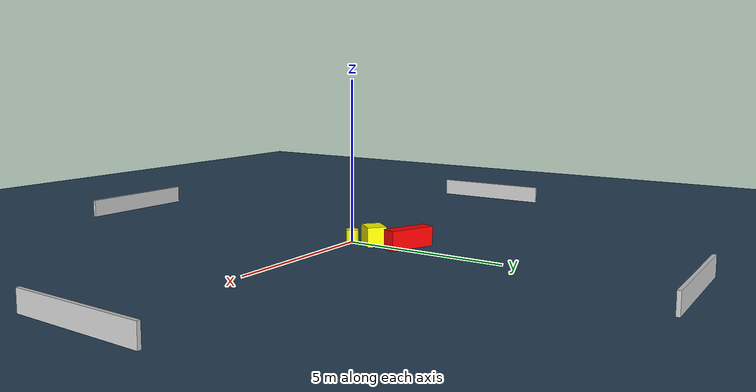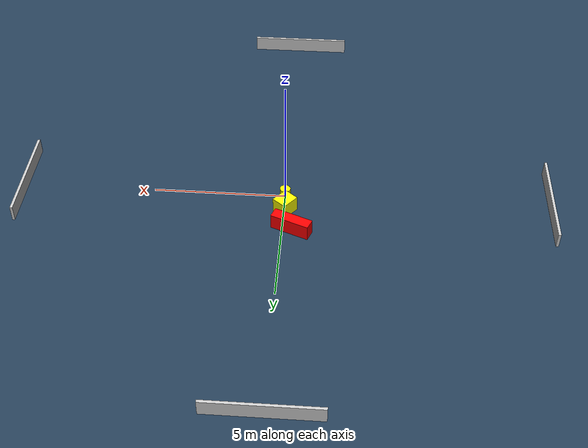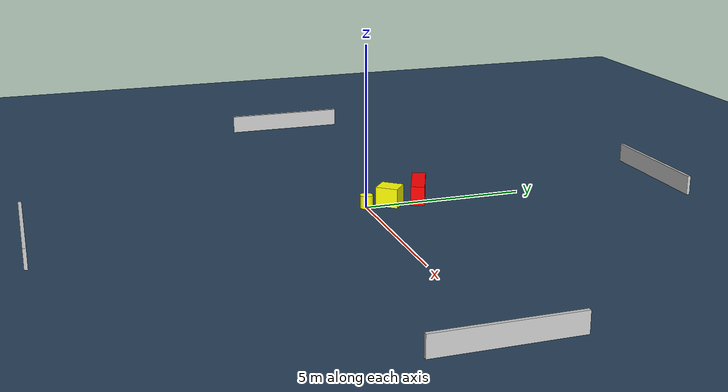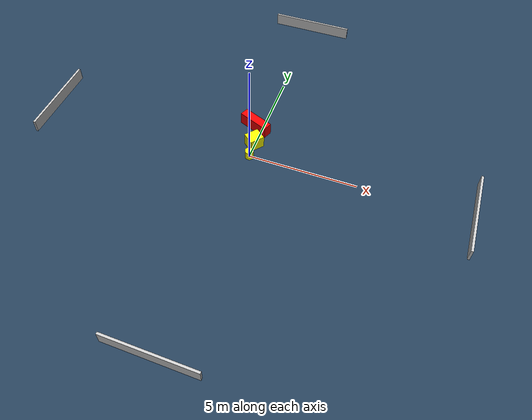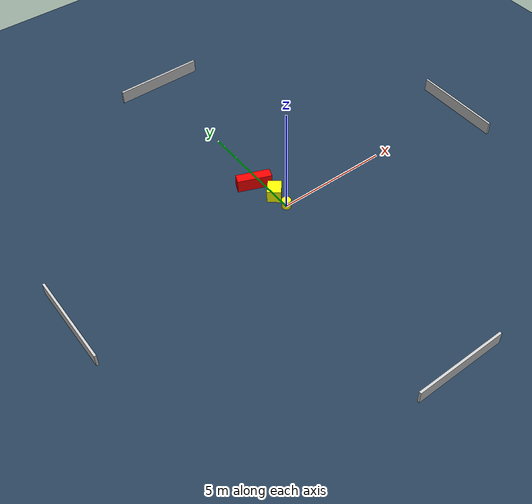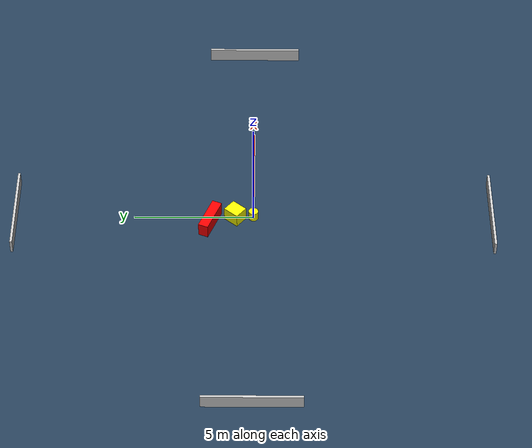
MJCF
<?xml version="1.0" ?>
<mujoco model="generated_environment">
  <option timestep="0.01" integrator="RK4" cone="elliptic"/>
  <default>
    <geom density="1"/>
  </default>
  <asset>
    <texture builtin="gradient" height="3072" name="skybox" rgb1="0.3 0.5 0.7" rgb2="0 0 0" type="skybox" width="512"/>
    <texture builtin="checker" height="300" name="groundplane" rgb1="0.2 0.3 0.4" rgb2="0.1 0.2 0.3" type="2d" width="300"/>
    <material name="groundplane" reflectance="0.2" texrepeat="5 5" texture="groundplane"/>
  </asset>
  <worldbody>
    <light dir="0 0 -1" directional="true" pos="0 0 1.5"/>
    <geom condim="3" friction="0.5 0.005 0.001" material="groundplane" name="floor" pos="0 0 0" size="0 0 0.05" type="plane"/>
    <body name="walls">
      <geom name="wall_1" condim="4" pos="-10.0 0.0 0.3" rgba="0.800000011920929 0.800000011920929 0.800000011920929 1.0" size="0.05 2.0 0.3" type="box"/>
      <geom name="wall_2" condim="4" pos="10.0 0.0 0.3" rgba="0.800000011920929 0.800000011920929 0.800000011920929 1.0" size="0.05 2.0 0.3" type="box"/>
      <geom name="wall_3" condim="4" pos="0.0 -10.0 0.3" rgba="0.800000011920929 0.800000011920929 0.800000011920929 1.0" size="2.0 0.05 0.3" type="box"/>
      <geom name="wall_4" condim="4" pos="0.0 10.0 0.3" rgba="0.800000011920929 0.800000011920929 0.800000011920929 1.0" size="2.0 0.05 0.3" type="box"/>
    </body>
    <body name="robot">
      <joint name="joint_x" type="slide" pos="0 0 0" axis="1 0 0"/>
      <joint name="joint_y" type="slide" pos="0 0 0" axis="0 1 0"/>
      <geom name="robot" type="cylinder" pos="0.0 0.0 0.2" size="0.2 0.2 0.0" mass="5.0" friction="1.0 0.005 0.0001" condim="4" rgba="1.0 1.0 0.0 1.0"/>
    </body>
    <body name="obstacle_1_movable">
      <geom name="obstacle_1_movable" condim="4" pos="-0.0480573509545639 0.7669115551489215 0.3" euler="0 0 230.32535363471726" friction="0.0 0.005 0.001" rgba="1.0 1.0 0.0 1.0" size="0.34506664294923167 0.2991868053273519 0.3" type="box" mass="0.1"/>
      <joint type="free"/>
    </body>
    <body name="obstacle_2_static">
      <geom name="obstacle_2_static" condim="4" pos="-0.3520514222589331 1.813260540161212 0.3" euler="0 0 337.8074135809195" friction="0.0 0.005 0.001" rgba="1.0 0.0 0.0 1.0" size="0.7465743982043107 0.21055330947139173 0.3" type="box"/>
    </body>
  </worldbody>
  <actuator>
    <motor name="actuator_x" joint="joint_x" gear="1" ctrlrange="-1 1"/>
    <motor name="actuator_y" joint="joint_y" gear="1" ctrlrange="-1 1"/>
  </actuator>
</mujoco>
